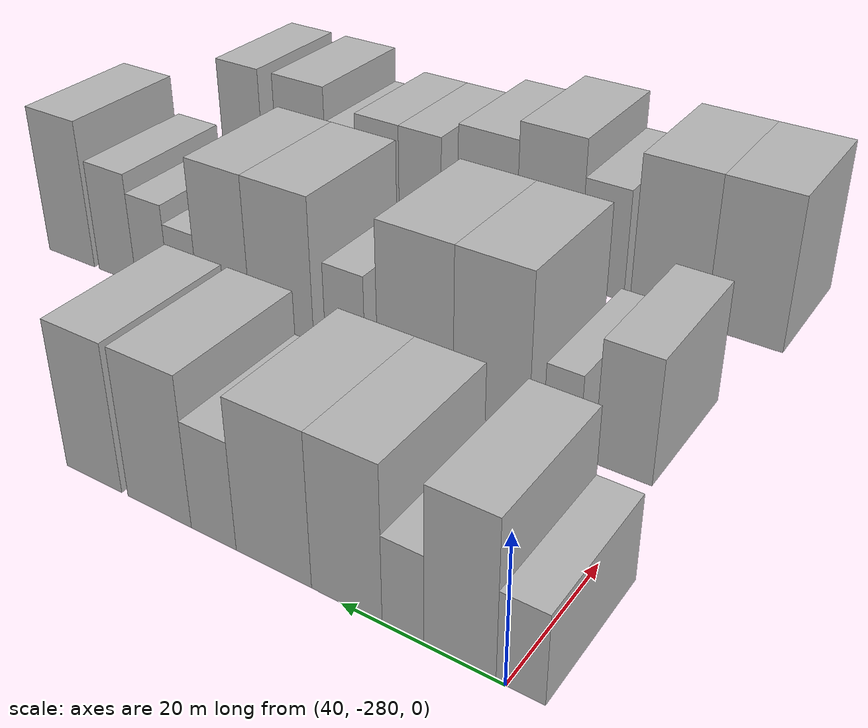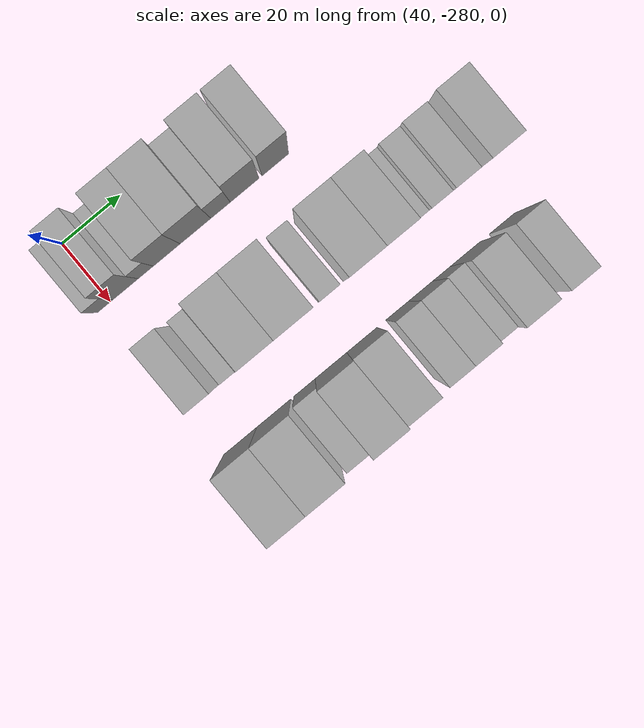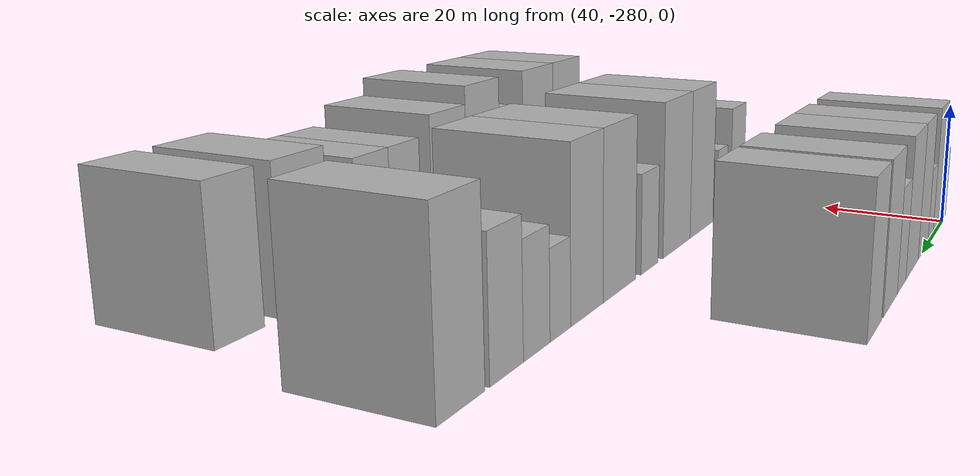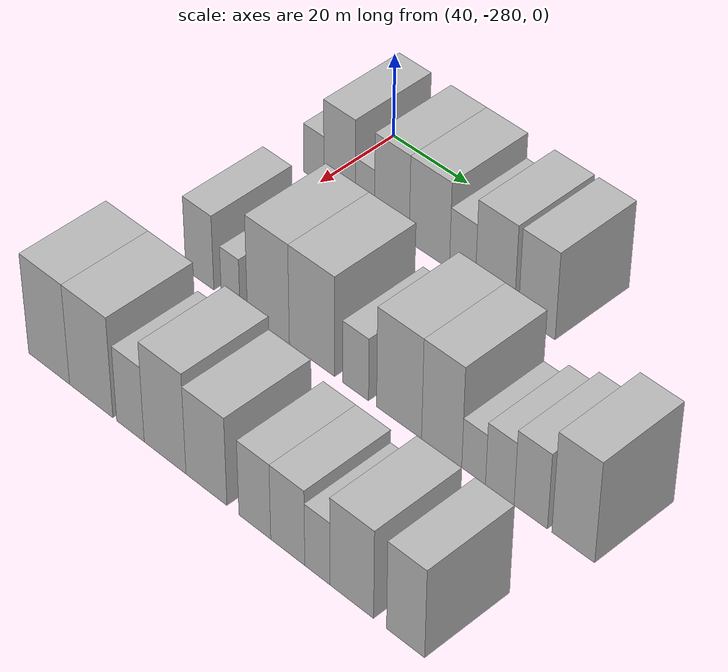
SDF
<sdf version="1.6">
 <world name="default">
  <model name="building_10">
   <static>1</static>
   <pose>50.0000 -281.6566 0 0.000000 0.000000 0.000000</pose>
   <link name="link">
    <pose>0 0 6.00 0 0 0</pose>
    <collision name="collision"><geometry><box><size>20.0000 5.5501 12.0000</size></box></geometry></collision>
    <visual name="visual">
     <cast_shadows>0</cast_shadows>
     <geometry><box><size>20.0000 5.5501 12.0000</size></box></geometry>
     <material>
      <script>
       <uri>model://HANNAS_wall/materials/scripts</uri>
       <uri>model://HANNAS_wall/materials/textures</uri>
       <name>vrc/HANNAS_wall</name>
      </script>
     </material>
    </visual>
   </link>
  </model>
  <model name="building_11">
   <static>1</static>
   <pose>50.0000 -274.6455 0 0.000000 0.000000 0.000000</pose>
   <link name="link">
    <pose>0 0 10.50 0 0 0</pose>
    <collision name="collision"><geometry><box><size>20.0000 8.4722 21.0000</size></box></geometry></collision>
    <visual name="visual">
     <cast_shadows>0</cast_shadows>
     <geometry><box><size>20.0000 8.4722 21.0000</size></box></geometry>
     <material>
      <script>
       <uri>model://HANNAS_wall/materials/scripts</uri>
       <uri>model://HANNAS_wall/materials/textures</uri>
       <name>vrc/HANNAS_wall</name>
      </script>
     </material>
    </visual>
   </link>
  </model>
  <model name="building_12">
   <static>1</static>
   <pose>50.0000 -267.8243 0 0.000000 0.000000 0.000000</pose>
   <link name="link">
    <pose>0 0 6.00 0 0 0</pose>
    <collision name="collision"><geometry><box><size>20.0000 5.1701 12.0000</size></box></geometry></collision>
    <visual name="visual">
     <cast_shadows>0</cast_shadows>
     <geometry><box><size>20.0000 5.1701 12.0000</size></box></geometry>
     <material>
      <script>
       <uri>model://HANNAS_wall/materials/scripts</uri>
       <uri>model://HANNAS_wall/materials/textures</uri>
       <name>vrc/HANNAS_wall</name>
      </script>
     </material>
    </visual>
   </link>
  </model>
  <model name="building_13">
   <static>1</static>
   <pose>50.0000 -260.6515 0 0.000000 0.000000 0.000000</pose>
   <link name="link">
    <pose>0 0 10.50 0 0 0</pose>
    <collision name="collision"><geometry><box><size>20.0000 9.1756 21.0000</size></box></geometry></collision>
    <visual name="visual">
     <cast_shadows>0</cast_shadows>
     <geometry><box><size>20.0000 9.1756 21.0000</size></box></geometry>
     <material>
      <script>
       <uri>model://HANNAS_wall/materials/scripts</uri>
       <uri>model://HANNAS_wall/materials/textures</uri>
       <name>vrc/HANNAS_wall</name>
      </script>
     </material>
    </visual>
   </link>
  </model>
  <model name="building_14">
   <static>1</static>
   <pose>50.0000 -250.8220 0 0.000000 0.000000 0.000000</pose>
   <link name="link">
    <pose>0 0 10.50 0 0 0</pose>
    <collision name="collision"><geometry><box><size>20.0000 10.4834 21.0000</size></box></geometry></collision>
    <visual name="visual">
     <cast_shadows>0</cast_shadows>
     <geometry><box><size>20.0000 10.4834 21.0000</size></box></geometry>
     <material>
      <script>
       <uri>model://HANNAS_wall/materials/scripts</uri>
       <uri>model://HANNAS_wall/materials/textures</uri>
       <name>vrc/HANNAS_wall</name>
      </script>
     </material>
    </visual>
   </link>
  </model>
  <model name="building_15">
   <static>1</static>
   <pose>50.0000 -242.2735 0 0.000000 0.000000 0.000000</pose>
   <link name="link">
    <pose>0 0 7.50 0 0 0</pose>
    <collision name="collision"><geometry><box><size>20.0000 6.6137 15.0000</size></box></geometry></collision>
    <visual name="visual">
     <cast_shadows>0</cast_shadows>
     <geometry><box><size>20.0000 6.6137 15.0000</size></box></geometry>
     <material>
      <script>
       <uri>model://HANNAS_wall/materials/scripts</uri>
       <uri>model://HANNAS_wall/materials/textures</uri>
       <name>vrc/HANNAS_wall</name>
      </script>
     </material>
    </visual>
   </link>
  </model>
  <model name="building_16">
   <static>1</static>
   <pose>50.0000 -234.0379 0 0.000000 0.000000 0.000000</pose>
   <link name="link">
    <pose>0 0 10.50 0 0 0</pose>
    <collision name="collision"><geometry><box><size>20.0000 9.8577 21.0000</size></box></geometry></collision>
    <visual name="visual">
     <cast_shadows>0</cast_shadows>
     <geometry><box><size>20.0000 9.8577 21.0000</size></box></geometry>
     <material>
      <script>
       <uri>model://HANNAS_wall/materials/scripts</uri>
       <uri>model://HANNAS_wall/materials/textures</uri>
       <name>vrc/HANNAS_wall</name>
      </script>
     </material>
    </visual>
   </link>
  </model>
  <model name="building_17">
   <static>1</static>
   <pose>50.0000 -223.5714 0 0.000000 0.000000 0.000000</pose>
   <link name="link">
    <pose>0 0 10.50 0 0 0</pose>
    <collision name="collision"><geometry><box><size>20.0000 9.0753 21.0000</size></box></geometry></collision>
    <visual name="visual">
     <cast_shadows>0</cast_shadows>
     <geometry><box><size>20.0000 9.0753 21.0000</size></box></geometry>
     <material>
      <script>
       <uri>model://HANNAS_wall/materials/scripts</uri>
       <uri>model://HANNAS_wall/materials/textures</uri>
       <name>vrc/HANNAS_wall</name>
      </script>
     </material>
    </visual>
   </link>
  </model>
  <model name="building_90">
   <static>1</static>
   <pose>85.0000 -275.6140 0 0.000000 0.000000 0.000000</pose>
   <link name="link">
    <pose>0 0 9.00 0 0 0</pose>
    <collision name="collision"><geometry><box><size>20.0000 7.6584 18.0000</size></box></geometry></collision>
    <visual name="visual">
     <cast_shadows>0</cast_shadows>
     <geometry><box><size>20.0000 7.6584 18.0000</size></box></geometry>
     <material>
      <script>
       <uri>model://HANNAS_wall/materials/scripts</uri>
       <uri>model://HANNAS_wall/materials/textures</uri>
       <name>vrc/HANNAS_wall</name>
      </script>
     </material>
    </visual>
   </link>
  </model>
  <model name="building_91">
   <static>1</static>
   <pose>85.0000 -267.2716 0 0.000000 0.000000 0.000000</pose>
   <link name="link">
    <pose>0 0 6.00 0 0 0</pose>
    <collision name="collision"><geometry><box><size>20.0000 5.0264 12.0000</size></box></geometry></collision>
    <visual name="visual">
     <cast_shadows>0</cast_shadows>
     <geometry><box><size>20.0000 5.0264 12.0000</size></box></geometry>
     <material>
      <script>
       <uri>model://HANNAS_wall/materials/scripts</uri>
       <uri>model://HANNAS_wall/materials/textures</uri>
       <name>vrc/HANNAS_wall</name>
      </script>
     </material>
    </visual>
   </link>
  </model>
  <model name="building_92">
   <static>1</static>
   <pose>85.0000 -257.2351 0 0.000000 0.000000 0.000000</pose>
   <link name="link">
    <pose>0 0 12.00 0 0 0</pose>
    <collision name="collision"><geometry><box><size>20.0000 11.0465 24.0000</size></box></geometry></collision>
    <visual name="visual">
     <cast_shadows>0</cast_shadows>
     <geometry><box><size>20.0000 11.0465 24.0000</size></box></geometry>
     <material>
      <script>
       <uri>model://HANNAS_wall/materials/scripts</uri>
       <uri>model://HANNAS_wall/materials/textures</uri>
       <name>vrc/HANNAS_wall</name>
      </script>
     </material>
    </visual>
   </link>
  </model>
  <model name="building_93">
   <static>1</static>
   <pose>85.0000 -245.8570 0 0.000000 0.000000 0.000000</pose>
   <link name="link">
    <pose>0 0 12.00 0 0 0</pose>
    <collision name="collision"><geometry><box><size>20.0000 11.7097 24.0000</size></box></geometry></collision>
    <visual name="visual">
     <cast_shadows>0</cast_shadows>
     <geometry><box><size>20.0000 11.7097 24.0000</size></box></geometry>
     <material>
      <script>
       <uri>model://HANNAS_wall/materials/scripts</uri>
       <uri>model://HANNAS_wall/materials/textures</uri>
       <name>vrc/HANNAS_wall</name>
      </script>
     </material>
    </visual>
   </link>
  </model>
  <model name="building_94">
   <static>1</static>
   <pose>85.0000 -234.7303 0 0.000000 0.000000 0.000000</pose>
   <link name="link">
    <pose>0 0 7.50 0 0 0</pose>
    <collision name="collision"><geometry><box><size>20.0000 6.5437 15.0000</size></box></geometry></collision>
    <visual name="visual">
     <cast_shadows>0</cast_shadows>
     <geometry><box><size>20.0000 6.5437 15.0000</size></box></geometry>
     <material>
      <script>
       <uri>model://HANNAS_wall/materials/scripts</uri>
       <uri>model://HANNAS_wall/materials/textures</uri>
       <name>vrc/HANNAS_wall</name>
      </script>
     </material>
    </visual>
   </link>
  </model>
  <model name="building_95">
   <static>1</static>
   <pose>85.0000 -223.9074 0 0.000000 0.000000 0.000000</pose>
   <link name="link">
    <pose>0 0 12.00 0 0 0</pose>
    <collision name="collision"><geometry><box><size>20.0000 11.1022 24.0000</size></box></geometry></collision>
    <visual name="visual">
     <cast_shadows>0</cast_shadows>
     <geometry><box><size>20.0000 11.1022 24.0000</size></box></geometry>
     <material>
      <script>
       <uri>model://HANNAS_wall/materials/scripts</uri>
       <uri>model://HANNAS_wall/materials/textures</uri>
       <name>vrc/HANNAS_wall</name>
      </script>
     </material>
    </visual>
   </link>
  </model>
  <model name="building_96">
   <static>1</static>
   <pose>85.0000 -213.4973 0 0.000000 0.000000 0.000000</pose>
   <link name="link">
    <pose>0 0 12.00 0 0 0</pose>
    <collision name="collision"><geometry><box><size>20.0000 9.7180 24.0000</size></box></geometry></collision>
    <visual name="visual">
     <cast_shadows>0</cast_shadows>
     <geometry><box><size>20.0000 9.7180 24.0000</size></box></geometry>
     <material>
      <script>
       <uri>model://HANNAS_wall/materials/scripts</uri>
       <uri>model://HANNAS_wall/materials/textures</uri>
       <name>vrc/HANNAS_wall</name>
      </script>
     </material>
    </visual>
   </link>
  </model>
  <model name="building_97">
   <static>1</static>
   <pose>85.0000 -205.8139 0 0.000000 0.000000 0.000000</pose>
   <link name="link">
    <pose>0 0 6.00 0 0 0</pose>
    <collision name="collision"><geometry><box><size>20.0000 5.6487 12.0000</size></box></geometry></collision>
    <visual name="visual">
     <cast_shadows>0</cast_shadows>
     <geometry><box><size>20.0000 5.6487 12.0000</size></box></geometry>
     <material>
      <script>
       <uri>model://HANNAS_wall/materials/scripts</uri>
       <uri>model://HANNAS_wall/materials/textures</uri>
       <name>vrc/HANNAS_wall</name>
      </script>
     </material>
    </visual>
   </link>
  </model>
  <model name="building_98">
   <static>1</static>
   <pose>85.0000 -199.6351 0 0.000000 0.000000 0.000000</pose>
   <link name="link">
    <pose>0 0 7.50 0 0 0</pose>
    <collision name="collision"><geometry><box><size>20.0000 6.7090 15.0000</size></box></geometry></collision>
    <visual name="visual">
     <cast_shadows>0</cast_shadows>
     <geometry><box><size>20.0000 6.7090 15.0000</size></box></geometry>
     <material>
      <script>
       <uri>model://HANNAS_wall/materials/scripts</uri>
       <uri>model://HANNAS_wall/materials/textures</uri>
       <name>vrc/HANNAS_wall</name>
      </script>
     </material>
    </visual>
   </link>
  </model>
  <model name="building_99">
   <static>1</static>
   <pose>85.0000 -192.4190 0 0.000000 0.000000 0.000000</pose>
   <link name="link">
    <pose>0 0 9.00 0 0 0</pose>
    <collision name="collision"><geometry><box><size>20.0000 7.7231 18.0000</size></box></geometry></collision>
    <visual name="visual">
     <cast_shadows>0</cast_shadows>
     <geometry><box><size>20.0000 7.7231 18.0000</size></box></geometry>
     <material>
      <script>
       <uri>model://HANNAS_wall/materials/scripts</uri>
       <uri>model://HANNAS_wall/materials/textures</uri>
       <name>vrc/HANNAS_wall</name>
      </script>
     </material>
    </visual>
   </link>
  </model>
  <model name="building_100">
   <static>1</static>
   <pose>85.0000 -182.6920 0 0.000000 0.000000 0.000000</pose>
   <link name="link">
    <pose>0 0 12.00 0 0 0</pose>
    <collision name="collision"><geometry><box><size>20.0000 9.7309 24.0000</size></box></geometry></collision>
    <visual name="visual">
     <cast_shadows>0</cast_shadows>
     <geometry><box><size>20.0000 9.7309 24.0000</size></box></geometry>
     <material>
      <script>
       <uri>model://HANNAS_wall/materials/scripts</uri>
       <uri>model://HANNAS_wall/materials/textures</uri>
       <name>vrc/HANNAS_wall</name>
      </script>
     </material>
    </visual>
   </link>
  </model>
  <model name="building_163">
   <static>1</static>
   <pose>120.0000 -277.0735 0 0.000000 0.000000 0.000000</pose>
   <link name="link">
    <pose>0 0 12.00 0 0 0</pose>
    <collision name="collision"><geometry><box><size>20.0000 11.2482 24.0000</size></box></geometry></collision>
    <visual name="visual">
     <cast_shadows>0</cast_shadows>
     <geometry><box><size>20.0000 11.2482 24.0000</size></box></geometry>
     <material>
      <script>
       <uri>model://HANNAS_wall/materials/scripts</uri>
       <uri>model://HANNAS_wall/materials/textures</uri>
       <name>vrc/HANNAS_wall</name>
      </script>
     </material>
    </visual>
   </link>
  </model>
  <model name="building_164">
   <static>1</static>
   <pose>120.0000 -265.6166 0 0.000000 0.000000 0.000000</pose>
   <link name="link">
    <pose>0 0 12.00 0 0 0</pose>
    <collision name="collision"><geometry><box><size>20.0000 11.6656 24.0000</size></box></geometry></collision>
    <visual name="visual">
     <cast_shadows>0</cast_shadows>
     <geometry><box><size>20.0000 11.6656 24.0000</size></box></geometry>
     <material>
      <script>
       <uri>model://HANNAS_wall/materials/scripts</uri>
       <uri>model://HANNAS_wall/materials/textures</uri>
       <name>vrc/HANNAS_wall</name>
      </script>
     </material>
    </visual>
   </link>
  </model>
  <model name="building_165">
   <static>1</static>
   <pose>120.0000 -255.1508 0 0.000000 0.000000 0.000000</pose>
   <link name="link">
    <pose>0 0 9.00 0 0 0</pose>
    <collision name="collision"><geometry><box><size>20.0000 7.2659 18.0000</size></box></geometry></collision>
    <visual name="visual">
     <cast_shadows>0</cast_shadows>
     <geometry><box><size>20.0000 7.2659 18.0000</size></box></geometry>
     <material>
      <script>
       <uri>model://HANNAS_wall/materials/scripts</uri>
       <uri>model://HANNAS_wall/materials/textures</uri>
       <name>vrc/HANNAS_wall</name>
      </script>
     </material>
    </visual>
   </link>
  </model>
  <model name="building_166">
   <static>1</static>
   <pose>120.0000 -246.1067 0 0.000000 0.000000 0.000000</pose>
   <link name="link">
    <pose>0 0 12.00 0 0 0</pose>
    <collision name="collision"><geometry><box><size>20.0000 10.8224 24.0000</size></box></geometry></collision>
    <visual name="visual">
     <cast_shadows>0</cast_shadows>
     <geometry><box><size>20.0000 10.8224 24.0000</size></box></geometry>
     <material>
      <script>
       <uri>model://HANNAS_wall/materials/scripts</uri>
       <uri>model://HANNAS_wall/materials/textures</uri>
       <name>vrc/HANNAS_wall</name>
      </script>
     </material>
    </visual>
   </link>
  </model>
  <model name="building_167">
   <static>1</static>
   <pose>120.0000 -235.5131 0 0.000000 0.000000 0.000000</pose>
   <link name="link">
    <pose>0 0 10.50 0 0 0</pose>
    <collision name="collision"><geometry><box><size>20.0000 10.3647 21.0000</size></box></geometry></collision>
    <visual name="visual">
     <cast_shadows>0</cast_shadows>
     <geometry><box><size>20.0000 10.3647 21.0000</size></box></geometry>
     <material>
      <script>
       <uri>model://HANNAS_wall/materials/scripts</uri>
       <uri>model://HANNAS_wall/materials/textures</uri>
       <name>vrc/HANNAS_wall</name>
      </script>
     </material>
    </visual>
   </link>
  </model>
  <model name="building_168">
   <static>1</static>
   <pose>120.0000 -223.4073 0 0.000000 0.000000 0.000000</pose>
   <link name="link">
    <pose>0 0 9.00 0 0 0</pose>
    <collision name="collision"><geometry><box><size>20.0000 7.8469 18.0000</size></box></geometry></collision>
    <visual name="visual">
     <cast_shadows>0</cast_shadows>
     <geometry><box><size>20.0000 7.8469 18.0000</size></box></geometry>
     <material>
      <script>
       <uri>model://HANNAS_wall/materials/scripts</uri>
       <uri>model://HANNAS_wall/materials/textures</uri>
       <name>vrc/HANNAS_wall</name>
      </script>
     </material>
    </visual>
   </link>
  </model>
  <model name="building_169">
   <static>1</static>
   <pose>120.0000 -215.3442 0 0.000000 0.000000 0.000000</pose>
   <link name="link">
    <pose>0 0 9.00 0 0 0</pose>
    <collision name="collision"><geometry><box><size>20.0000 8.2793 18.0000</size></box></geometry></collision>
    <visual name="visual">
     <cast_shadows>0</cast_shadows>
     <geometry><box><size>20.0000 8.2793 18.0000</size></box></geometry>
     <material>
      <script>
       <uri>model://HANNAS_wall/materials/scripts</uri>
       <uri>model://HANNAS_wall/materials/textures</uri>
       <name>vrc/HANNAS_wall</name>
      </script>
     </material>
    </visual>
   </link>
  </model>
  <model name="building_170">
   <static>1</static>
   <pose>120.0000 -208.2001 0 0.000000 0.000000 0.000000</pose>
   <link name="link">
    <pose>0 0 7.50 0 0 0</pose>
    <collision name="collision"><geometry><box><size>20.0000 6.0088 15.0000</size></box></geometry></collision>
    <visual name="visual">
     <cast_shadows>0</cast_shadows>
     <geometry><box><size>20.0000 6.0088 15.0000</size></box></geometry>
     <material>
      <script>
       <uri>model://HANNAS_wall/materials/scripts</uri>
       <uri>model://HANNAS_wall/materials/textures</uri>
       <name>vrc/HANNAS_wall</name>
      </script>
     </material>
    </visual>
   </link>
  </model>
  <model name="building_171">
   <static>1</static>
   <pose>120.0000 -200.0648 0 0.000000 0.000000 0.000000</pose>
   <link name="link">
    <pose>0 0 10.50 0 0 0</pose>
    <collision name="collision"><geometry><box><size>20.0000 10.2617 21.0000</size></box></geometry></collision>
    <visual name="visual">
     <cast_shadows>0</cast_shadows>
     <geometry><box><size>20.0000 10.2617 21.0000</size></box></geometry>
     <material>
      <script>
       <uri>model://HANNAS_wall/materials/scripts</uri>
       <uri>model://HANNAS_wall/materials/textures</uri>
       <name>vrc/HANNAS_wall</name>
      </script>
     </material>
    </visual>
   </link>
  </model>
  <model name="building_172">
   <static>1</static>
   <pose>120.0000 -187.5641 0 0.000000 0.000000 0.000000</pose>
   <link name="link">
    <pose>0 0 10.50 0 0 0</pose>
    <collision name="collision"><geometry><box><size>20.0000 8.7396 21.0000</size></box></geometry></collision>
    <visual name="visual">
     <cast_shadows>0</cast_shadows>
     <geometry><box><size>20.0000 8.7396 21.0000</size></box></geometry>
     <material>
      <script>
       <uri>model://HANNAS_wall/materials/scripts</uri>
       <uri>model://HANNAS_wall/materials/textures</uri>
       <name>vrc/HANNAS_wall</name>
      </script>
     </material>
    </visual>
   </link>
  </model>
 </world>
</sdf>
